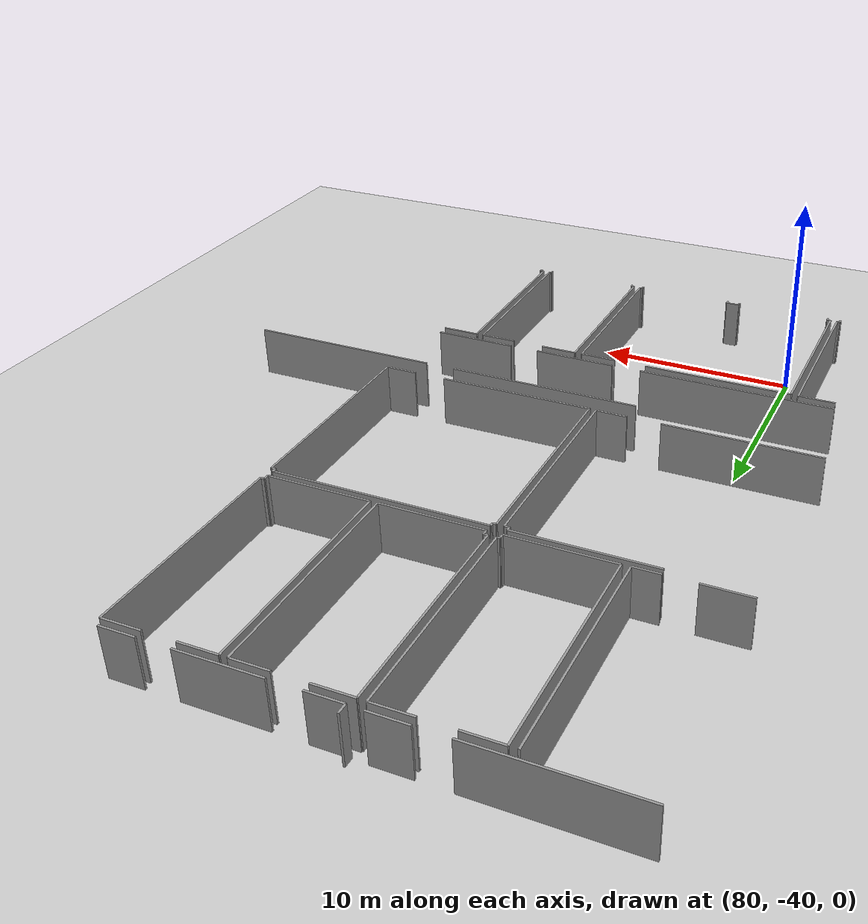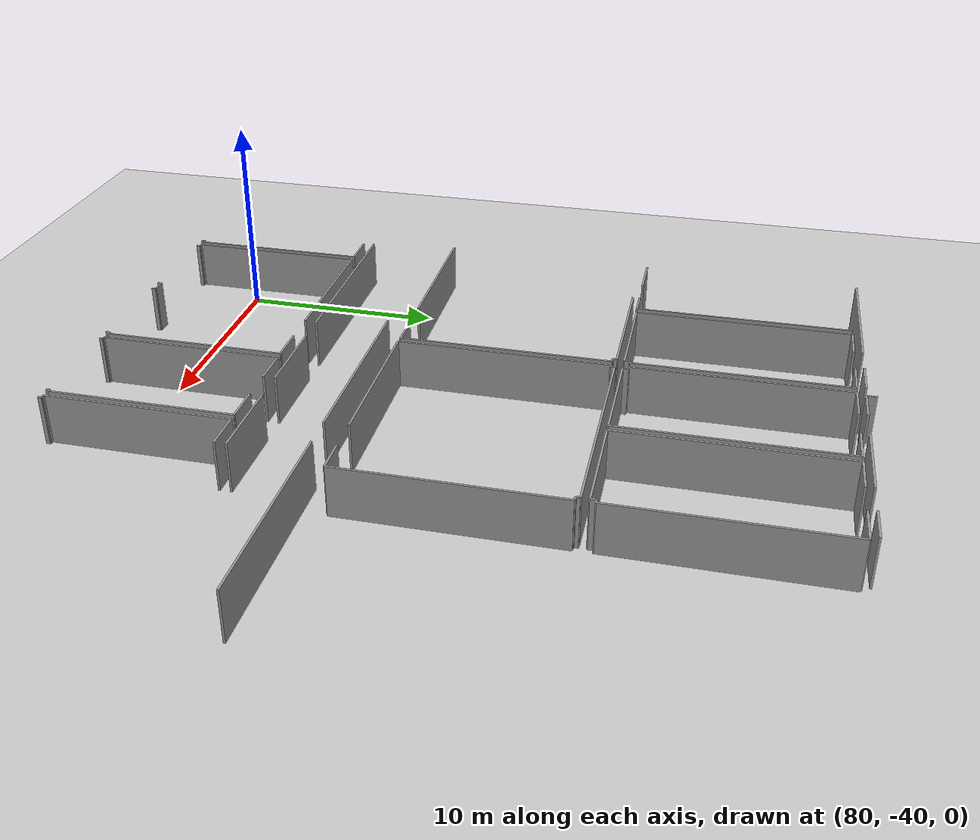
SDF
<sdf version="1.6">
 <world name="default">
  <model name="ground_plane">
   <static>1</static>
   <link name="link">
    <collision name="collision">
     <geometry><plane><normal>0 0 1</normal><size>100 100</size></plane></geometry>
     <surface><friction><ode><mu>100</mu><mu2>50</mu2></ode></friction></surface>
    </collision>
    <visual name="visual">
     <cast_shadows>0</cast_shadows>
     <geometry><plane><normal>0 0 1</normal><size>100 100</size></plane></geometry>
     <material>
      <script><uri>file://media/materials/scripts/gazebo.material</uri><name>Gazebo/Grey</name></script>
     </material>
    </visual>
   </link>
  </model>
  <model name="50015847">
   <static>1</static>
   <link name="Wall_945">
    <collision name="Wall_945_Collision">
     <geometry><box><size>10.6134641786 0.1 2.5</size></box></geometry>
     <pose>5.30673208929 0 1.25 0 0 0</pose>
    </collision>
    <visual name="Wall_945_Visual">
     <pose>5.30673208929 0 1.25 0 0 0</pose>
     <geometry><box><size>10.6134641786 0.1 2.5</size></box></geometry>
     <material>
      <script><uri>file://media/materials/scripts/gazebo.material</uri><name>Gazebo/Grey</name></script>
      <ambient>1 1 1 1</ambient>
     </material>
    </visual>
    <pose>225.061270148 -62.5532618091 0 0 0 1.57079632679</pose>
   </link>
   <link name="Wall_946">
    <collision name="Wall_946_Collision">
     <geometry><box><size>1.8406467687 0.1 2.5</size></box></geometry>
     <pose>0.920323384349 0 1.25 0 0 0</pose>
    </collision>
    <visual name="Wall_946_Visual">
     <pose>0.920323384349 0 1.25 0 0 0</pose>
     <geometry><box><size>1.8406467687 0.1 2.5</size></box></geometry>
     <material>
      <script><uri>file://media/materials/scripts/gazebo.material</uri><name>Gazebo/Grey</name></script>
      <ambient>1 1 1 1</ambient>
     </material>
    </visual>
    <pose>225.061270148 -51.9397976305 0 0 0 0.0</pose>
   </link>
   <link name="Wall_947">
    <collision name="Wall_947_Collision">
     <geometry><box><size>1.85844307724 0.1 2.5</size></box></geometry>
     <pose>0.929221538618 0 1.25 0 0 0</pose>
    </collision>
    <visual name="Wall_947_Visual">
     <pose>0.929221538618 0 1.25 0 0 0</pose>
     <geometry><box><size>1.85844307724 0.1 2.5</size></box></geometry>
     <material>
      <script><uri>file://media/materials/scripts/gazebo.material</uri><name>Gazebo/Grey</name></script>
      <ambient>1 1 1 1</ambient>
     </material>
    </visual>
    <pose>228.455280419 -51.9397976305 0 0 0 0.0</pose>
   </link>
   <link name="Wall_948">
    <collision name="Wall_948_Collision">
     <geometry><box><size>10.3343163675 0.1 2.5</size></box></geometry>
     <pose>5.16715818376 0 1.25 0 0 0</pose>
    </collision>
    <visual name="Wall_948_Visual">
     <pose>5.16715818376 0 1.25 0 0 0</pose>
     <geometry><box><size>10.3343163675 0.1 2.5</size></box></geometry>
     <material>
      <script><uri>file://media/materials/scripts/gazebo.material</uri><name>Gazebo/Grey</name></script>
      <ambient>1 1 1 1</ambient>
     </material>
    </visual>
    <pose>230.313723496 -51.9397976305 0 0 0 -1.57079632679</pose>
   </link>
   <link name="Wall_949">
    <collision name="Wall_949_Collision">
     <geometry><box><size>0.195759393909 0.1 2.5</size></box></geometry>
     <pose>0.0978796969543 0 1.25 0 0 0</pose>
    </collision>
    <visual name="Wall_949_Visual">
     <pose>0.0978796969543 0 1.25 0 0 0</pose>
     <geometry><box><size>0.195759393909 0.1 2.5</size></box></geometry>
     <material>
      <script><uri>file://media/materials/scripts/gazebo.material</uri><name>Gazebo/Grey</name></script>
      <ambient>1 1 1 1</ambient>
     </material>
    </visual>
    <pose>230.313723496 -62.2741139981 0 0 0 3.14159265359</pose>
   </link>
   <link name="Wall_950">
    <collision name="Wall_950_Collision">
     <geometry><box><size>0.274825850409 0.1 2.5</size></box></geometry>
     <pose>0.137412925205 0 1.25 0 0 0</pose>
    </collision>
    <visual name="Wall_950_Visual">
     <pose>0.137412925205 0 1.25 0 0 0</pose>
     <geometry><box><size>0.274825850409 0.1 2.5</size></box></geometry>
     <material>
      <script><uri>file://media/materials/scripts/gazebo.material</uri><name>Gazebo/Grey</name></script>
      <ambient>1 1 1 1</ambient>
     </material>
    </visual>
    <pose>230.117964102 -62.2741139981 0 0 0 -1.57079632679</pose>
   </link>
   <link name="Wall_951">
    <collision name="Wall_951_Collision">
     <geometry><box><size>5.05669580133 0.1 2.5</size></box></geometry>
     <pose>2.52834790067 0 1.25 0 0 0</pose>
    </collision>
    <visual name="Wall_951_Visual">
     <pose>2.52834790067 0 1.25 0 0 0</pose>
     <geometry><box><size>5.05669580133 0.1 2.5</size></box></geometry>
     <material>
      <script><uri>file://media/materials/scripts/gazebo.material</uri><name>Gazebo/Grey</name></script>
      <ambient>1 1 1 1</ambient>
     </material>
    </visual>
    <pose>230.117964102 -62.5489398485 0 0 0 -3.14073795294</pose>
   </link>
   <link name="Wall_952">
    <collision name="Wall_952_Collision">
     <geometry><box><size>10.3335536686 0.1 2.5</size></box></geometry>
     <pose>5.16677683429 0 1.25 0 0 0</pose>
    </collision>
    <visual name="Wall_952_Visual">
     <pose>5.16677683429 0 1.25 0 0 0</pose>
     <geometry><box><size>10.3335536686 0.1 2.5</size></box></geometry>
     <material>
      <script><uri>file://media/materials/scripts/gazebo.material</uri><name>Gazebo/Grey</name></script>
      <ambient>1 1 1 1</ambient>
     </material>
    </visual>
    <pose>219.468144608 -62.2830121523 0 0 0 1.57079632679</pose>
   </link>
   <link name="Wall_953">
    <collision name="Wall_953_Collision">
     <geometry><box><size>1.88895103473 0.1 2.5</size></box></geometry>
     <pose>0.944475517364 0 1.25 0 0 0</pose>
    </collision>
    <visual name="Wall_953_Visual">
     <pose>0.944475517364 0 1.25 0 0 0</pose>
     <geometry><box><size>1.88895103473 0.1 2.5</size></box></geometry>
     <material>
      <script><uri>file://media/materials/scripts/gazebo.material</uri><name>Gazebo/Grey</name></script>
      <ambient>1 1 1 1</ambient>
     </material>
    </visual>
    <pose>219.468144608 -51.9494584838 0 0 0 0.0</pose>
   </link>
   <link name="Wall_954">
    <collision name="Wall_954_Collision">
     <geometry><box><size>1.7847155133 0.1 2.5</size></box></geometry>
     <pose>0.892357756648 0 1.25 0 0 0</pose>
    </collision>
    <visual name="Wall_954_Visual">
     <pose>0.892357756648 0 1.25 0 0 0</pose>
     <geometry><box><size>1.7847155133 0.1 2.5</size></box></geometry>
     <material>
      <script><uri>file://media/materials/scripts/gazebo.material</uri><name>Gazebo/Grey</name></script>
      <ambient>1 1 1 1</ambient>
     </material>
    </visual>
    <pose>222.913001475 -51.9494584838 0 0 0 0.0</pose>
   </link>
   <link name="Wall_955">
    <collision name="Wall_955_Collision">
     <geometry><box><size>10.6038033254 0.1 2.5</size></box></geometry>
     <pose>5.30190166268 0 1.25 0 0 0</pose>
    </collision>
    <visual name="Wall_955_Visual">
     <pose>5.30190166268 0 1.25 0 0 0</pose>
     <geometry><box><size>10.6038033254 0.1 2.5</size></box></geometry>
     <material>
      <script><uri>file://media/materials/scripts/gazebo.material</uri><name>Gazebo/Grey</name></script>
      <ambient>1 1 1 1</ambient>
     </material>
    </visual>
    <pose>224.697716988 -51.9494584838 0 0 0 -1.57079632679</pose>
   </link>
   <link name="Wall_956">
    <collision name="Wall_956_Collision">
     <geometry><box><size>5.03381298622 0.1 2.5</size></box></geometry>
     <pose>2.51690649311 0 1.25 0 0 0</pose>
    </collision>
    <visual name="Wall_956_Visual">
     <pose>2.51690649311 0 1.25 0 0 0</pose>
     <geometry><box><size>5.03381298622 0.1 2.5</size></box></geometry>
     <material>
      <script><uri>file://media/materials/scripts/gazebo.material</uri><name>Gazebo/Grey</name></script>
      <ambient>1 1 1 1</ambient>
     </material>
    </visual>
    <pose>224.697716988 -62.5532618091 0 0 0 3.14159265359</pose>
   </link>
   <link name="Wall_957">
    <collision name="Wall_957_Collision">
     <geometry><box><size>0.285249402552 0.1 2.5</size></box></geometry>
     <pose>0.142624701276 0 1.25 0 0 0</pose>
    </collision>
    <visual name="Wall_957_Visual">
     <pose>0.142624701276 0 1.25 0 0 0</pose>
     <geometry><box><size>0.285249402552 0.1 2.5</size></box></geometry>
     <material>
      <script><uri>file://media/materials/scripts/gazebo.material</uri><name>Gazebo/Grey</name></script>
      <ambient>1 1 1 1</ambient>
     </material>
    </visual>
    <pose>219.663904002 -62.5532618091 0 0 0 1.57079632679</pose>
   </link>
   <link name="Wall_958">
    <collision name="Wall_958_Collision">
     <geometry><box><size>0.196333218474 0.1 2.5</size></box></geometry>
     <pose>0.0981666092372 0 1.25 0 0 0</pose>
    </collision>
    <visual name="Wall_958_Visual">
     <pose>0.0981666092372 0 1.25 0 0 0</pose>
     <geometry><box><size>0.196333218474 0.1 2.5</size></box></geometry>
     <material>
      <script><uri>file://media/materials/scripts/gazebo.material</uri><name>Gazebo/Grey</name></script>
      <ambient>1 1 1 1</ambient>
     </material>
    </visual>
    <pose>219.663904002 -62.2680124066 0 0 0 -3.0651187065</pose>
   </link>
   <link name="Wall_959">
    <collision name="Wall_959_Collision">
     <geometry><box><size>10.6088879849 0.1 2.5</size></box></geometry>
     <pose>5.30444399247 0 1.25 0 0 0</pose>
    </collision>
    <visual name="Wall_959_Visual">
     <pose>5.30444399247 0 1.25 0 0 0</pose>
     <geometry><box><size>10.6088879849 0.1 2.5</size></box></geometry>
     <material>
      <script><uri>file://media/materials/scripts/gazebo.material</uri><name>Gazebo/Grey</name></script>
      <ambient>1 1 1 1</ambient>
     </material>
    </visual>
    <pose>213.857222759 -62.5489398485 0 0 0 1.57079632679</pose>
   </link>
   <link name="Wall_960">
    <collision name="Wall_960_Collision">
     <geometry><box><size>1.79488483246 0.1 2.5</size></box></geometry>
     <pose>0.89744241623 0 1.25 0 0 0</pose>
    </collision>
    <visual name="Wall_960_Visual">
     <pose>0.89744241623 0 1.25 0 0 0</pose>
     <geometry><box><size>1.79488483246 0.1 2.5</size></box></geometry>
     <material>
      <script><uri>file://media/materials/scripts/gazebo.material</uri><name>Gazebo/Grey</name></script>
      <ambient>1 1 1 1</ambient>
     </material>
    </visual>
    <pose>213.857222759 -51.9400518635 0 0 0 0.0</pose>
   </link>
   <link name="Wall_961">
    <collision name="Wall_961_Collision">
     <geometry><box><size>1.88640870494 0.1 2.5</size></box></geometry>
     <pose>0.943204352469 0 1.25 0 0 0</pose>
    </collision>
    <visual name="Wall_961_Visual">
     <pose>0.943204352469 0 1.25 0 0 0</pose>
     <geometry><box><size>1.88640870494 0.1 2.5</size></box></geometry>
     <material>
      <script><uri>file://media/materials/scripts/gazebo.material</uri><name>Gazebo/Grey</name></script>
      <ambient>1 1 1 1</ambient>
     </material>
    </visual>
    <pose>217.192759445 -51.9400518635 0 0 0 0.0</pose>
   </link>
   <link name="Wall_962">
    <collision name="Wall_962_Collision">
     <geometry><box><size>10.3485534143 0.1 2.5</size></box></geometry>
     <pose>5.17427670717 0 1.25 0 0 0</pose>
    </collision>
    <visual name="Wall_962_Visual">
     <pose>5.17427670717 0 1.25 0 0 0</pose>
     <geometry><box><size>10.3485534143 0.1 2.5</size></box></geometry>
     <material>
      <script><uri>file://media/materials/scripts/gazebo.material</uri><name>Gazebo/Grey</name></script>
      <ambient>1 1 1 1</ambient>
     </material>
    </visual>
    <pose>219.07916815 -51.9400518635 0 0 0 -1.57079632679</pose>
   </link>
   <link name="Wall_963">
    <collision name="Wall_963_Collision">
     <geometry><box><size>0.147455127879 0.1 2.5</size></box></geometry>
     <pose>0.0737275639396 0 1.25 0 0 0</pose>
    </collision>
    <visual name="Wall_963_Visual">
     <pose>0.0737275639396 0 1.25 0 0 0</pose>
     <geometry><box><size>0.147455127879 0.1 2.5</size></box></geometry>
     <material>
      <script><uri>file://media/materials/scripts/gazebo.material</uri><name>Gazebo/Grey</name></script>
      <ambient>1 1 1 1</ambient>
     </material>
    </visual>
    <pose>219.07916815 -62.2886052779 0 0 0 3.14159265359</pose>
   </link>
   <link name="Wall_964">
    <collision name="Wall_964_Collision">
     <geometry><box><size>0.2603345706 0.1 2.5</size></box></geometry>
     <pose>0.1301672853 0 1.25 0 0 0</pose>
    </collision>
    <visual name="Wall_964_Visual">
     <pose>0.1301672853 0 1.25 0 0 0</pose>
     <geometry><box><size>0.2603345706 0.1 2.5</size></box></geometry>
     <material>
      <script><uri>file://media/materials/scripts/gazebo.material</uri><name>Gazebo/Grey</name></script>
      <ambient>1 1 1 1</ambient>
     </material>
    </visual>
    <pose>218.931713022 -62.2886052779 0 0 0 -1.57079632679</pose>
   </link>
   <link name="Wall_965">
    <collision name="Wall_965_Collision">
     <geometry><box><size>5.07449026288 0.1 2.5</size></box></geometry>
     <pose>2.53724513144 0 1.25 0 0 0</pose>
    </collision>
    <visual name="Wall_965_Visual">
     <pose>2.53724513144 0 1.25 0 0 0</pose>
     <geometry><box><size>5.07449026288 0.1 2.5</size></box></geometry>
     <material>
      <script><uri>file://media/materials/scripts/gazebo.material</uri><name>Gazebo/Grey</name></script>
      <ambient>1 1 1 1</ambient>
     </material>
    </visual>
    <pose>218.931713022 -62.5489398485 0 0 0 3.14159265359</pose>
   </link>
   <link name="Wall_969">
    <collision name="Wall_969_Collision">
     <geometry><box><size>10.6480398637 0.1 2.5</size></box></geometry>
     <pose>5.32401993187 0 1.25 0 0 0</pose>
    </collision>
    <visual name="Wall_969_Visual">
     <pose>5.32401993187 0 1.25 0 0 0</pose>
     <geometry><box><size>10.6480398637 0.1 2.5</size></box></geometry>
     <material>
      <script><uri>file://media/materials/scripts/gazebo.material</uri><name>Gazebo/Grey</name></script>
      <ambient>1 1 1 1</ambient>
     </material>
    </visual>
    <pose>213.460619312 -51.9303910103 0 0 0 -1.57079632679</pose>
   </link>
   <link name="Wall_970">
    <collision name="Wall_970_Collision">
     <geometry><box><size>1.27116489551 0.1 2.5</size></box></geometry>
     <pose>0.635582447755 0 1.25 0 0 0</pose>
    </collision>
    <visual name="Wall_970_Visual">
     <pose>0.635582447755 0 1.25 0 0 0</pose>
     <geometry><box><size>1.27116489551 0.1 2.5</size></box></geometry>
     <material>
      <script><uri>file://media/materials/scripts/gazebo.material</uri><name>Gazebo/Grey</name></script>
      <ambient>1 1 1 1</ambient>
     </material>
    </visual>
    <pose>213.460619312 -62.5784308741 0 0 0 3.14159265359</pose>
   </link>
   <link name="Wall_971">
    <collision name="Wall_971_Collision">
     <geometry><box><size>2.26140234911 0.1 2.5</size></box></geometry>
     <pose>1.13070117456 0 1.25 0 0 0</pose>
    </collision>
    <visual name="Wall_971_Visual">
     <pose>1.13070117456 0 1.25 0 0 0</pose>
     <geometry><box><size>2.26140234911 0.1 2.5</size></box></geometry>
     <material>
      <script><uri>file://media/materials/scripts/gazebo.material</uri><name>Gazebo/Grey</name></script>
      <ambient>1 1 1 1</ambient>
     </material>
    </visual>
    <pose>210.714903137 -62.5784308741 0 0 0 3.14159265359</pose>
   </link>
   <link name="Wall_1197">
    <collision name="Wall_1197_Collision">
     <geometry><box><size>1.68810698124 0.1 2.5</size></box></geometry>
     <pose>0.844053490619 0 1.25 0 0 0</pose>
    </collision>
    <visual name="Wall_1197_Visual">
     <pose>0.844053490619 0 1.25 0 0 0</pose>
     <geometry><box><size>1.68810698124 0.1 2.5</size></box></geometry>
     <material>
      <script><uri>file://media/materials/scripts/gazebo.material</uri><name>Gazebo/Grey</name></script>
      <ambient>1 1 1 1</ambient>
     </material>
    </visual>
    <pose>230.097625464 -51.556668531 0 0 0 3.14159265359</pose>
   </link>
   <link name="Wall_1198">
    <collision name="Wall_1198_Collision">
     <geometry><box><size>3.96603447399 0.1 2.5</size></box></geometry>
     <pose>1.983017237 0 1.25 0 0 0</pose>
    </collision>
    <visual name="Wall_1198_Visual">
     <pose>1.983017237 0 1.25 0 0 0</pose>
     <geometry><box><size>3.96603447399 0.1 2.5</size></box></geometry>
     <material>
      <script><uri>file://media/materials/scripts/gazebo.material</uri><name>Gazebo/Grey</name></script>
      <ambient>1 1 1 1</ambient>
     </material>
    </visual>
    <pose>226.835816342 -51.556668531 0 0 0 3.14159265359</pose>
   </link>
   <link name="Wall_1199">
    <collision name="Wall_1199_Collision">
     <geometry><box><size>1.68556465145 0.1 2.5</size></box></geometry>
     <pose>0.842782325723 0 1.25 0 0 0</pose>
    </collision>
    <visual name="Wall_1199_Visual">
     <pose>0.842782325723 0 1.25 0 0 0</pose>
     <geometry><box><size>1.68556465145 0.1 2.5</size></box></geometry>
     <material>
      <script><uri>file://media/materials/scripts/gazebo.material</uri><name>Gazebo/Grey</name></script>
      <ambient>1 1 1 1</ambient>
     </material>
    </visual>
    <pose>221.357095642 -51.556668531 0 0 0 3.14159265359</pose>
   </link>
   <link name="Wall_1200">
    <collision name="Wall_1200_Collision">
     <geometry><box><size>0.491432348604 0.1 2.5</size></box></geometry>
     <pose>0.245716174302 0 1.25 0 0 0</pose>
    </collision>
    <visual name="Wall_1200_Visual">
     <pose>0.245716174302 0 1.25 0 0 0</pose>
     <geometry><box><size>0.491432348604 0.1 2.5</size></box></geometry>
     <material>
      <script><uri>file://media/materials/scripts/gazebo.material</uri><name>Gazebo/Grey</name></script>
      <ambient>1 1 1 1</ambient>
     </material>
    </visual>
    <pose>219.671530991 -51.556668531 0 0 0 1.57079632679</pose>
   </link>
   <link name="Wall_1203">
    <collision name="Wall_1203_Collision">
     <geometry><box><size>1.79234250267 0.1 2.5</size></box></geometry>
     <pose>0.896171251335 0 1.25 0 0 0</pose>
    </collision>
    <visual name="Wall_1203_Visual">
     <pose>0.896171251335 0 1.25 0 0 0</pose>
     <geometry><box><size>1.79234250267 0.1 2.5</size></box></geometry>
     <material>
      <script><uri>file://media/materials/scripts/gazebo.material</uri><name>Gazebo/Grey</name></script>
      <ambient>1 1 1 1</ambient>
     </material>
    </visual>
    <pose>218.944424671 -51.5269232725 0 0 0 3.14159265359</pose>
   </link>
   <link name="Wall_1204">
    <collision name="Wall_1204_Collision">
     <geometry><box><size>7.20216606498 0.1 2.5</size></box></geometry>
     <pose>3.60108303249 0 1.25 0 0 0</pose>
    </collision>
    <visual name="Wall_1204_Visual">
     <pose>3.60108303249 0 1.25 0 0 0</pose>
     <geometry><box><size>7.20216606498 0.1 2.5</size></box></geometry>
     <material>
      <script><uri>file://media/materials/scripts/gazebo.material</uri><name>Gazebo/Grey</name></script>
      <ambient>1 1 1 1</ambient>
     </material>
    </visual>
    <pose>215.654649921 -51.5269232725 0 0 0 3.14159265359</pose>
   </link>
   <link name="Wall_1464">
    <collision name="Wall_1464_Collision">
     <geometry><box><size>1.80251182183 0.1 2.5</size></box></geometry>
     <pose>0.901255910917 0 1.25 0 0 0</pose>
    </collision>
    <visual name="Wall_1464_Visual">
     <pose>0.901255910917 0 1.25 0 0 0</pose>
     <geometry><box><size>1.80251182183 0.1 2.5</size></box></geometry>
     <material>
      <script><uri>file://media/materials/scripts/gazebo.material</uri><name>Gazebo/Grey</name></script>
      <ambient>1 1 1 1</ambient>
     </material>
    </visual>
    <pose>208.884425688 -78.6454466873 0 0 0 0.0</pose>
   </link>
   <link name="Wall_1465">
    <collision name="Wall_1465_Collision">
     <geometry><box><size>8.96857680378 0.1 2.5</size></box></geometry>
     <pose>4.48428840189 0 1.25 0 0 0</pose>
    </collision>
    <visual name="Wall_1465_Visual">
     <pose>4.48428840189 0 1.25 0 0 0</pose>
     <geometry><box><size>8.96857680378 0.1 2.5</size></box></geometry>
     <material>
      <script><uri>file://media/materials/scripts/gazebo.material</uri><name>Gazebo/Grey</name></script>
      <ambient>1 1 1 1</ambient>
     </material>
    </visual>
    <pose>210.68693751 -78.6454466873 0 0 0 -1.57079632679</pose>
   </link>
   <link name="Wall_1466">
    <collision name="Wall_1466_Collision">
     <geometry><box><size>0.144912798088 0.1 2.5</size></box></geometry>
     <pose>0.0724563990441 0 1.25 0 0 0</pose>
    </collision>
    <visual name="Wall_1466_Visual">
     <pose>0.0724563990441 0 1.25 0 0 0</pose>
     <geometry><box><size>0.144912798088 0.1 2.5</size></box></geometry>
     <material>
      <script><uri>file://media/materials/scripts/gazebo.material</uri><name>Gazebo/Grey</name></script>
      <ambient>1 1 1 1</ambient>
     </material>
    </visual>
    <pose>210.68693751 -87.6140234911 0 0 0 3.14159265359</pose>
   </link>
   <link name="Wall_1467">
    <collision name="Wall_1467_Collision">
     <geometry><box><size>0.222962322672 0.1 2.5</size></box></geometry>
     <pose>0.111481161336 0 1.25 0 0 0</pose>
    </collision>
    <visual name="Wall_1467_Visual">
     <pose>0.111481161336 0 1.25 0 0 0</pose>
     <geometry><box><size>0.222962322672 0.1 2.5</size></box></geometry>
     <material>
      <script><uri>file://media/materials/scripts/gazebo.material</uri><name>Gazebo/Grey</name></script>
      <ambient>1 1 1 1</ambient>
     </material>
    </visual>
    <pose>210.542024711 -87.6140234911 0 0 0 -1.57079632679</pose>
   </link>
   <link name="Wall_1474">
    <collision name="Wall_1474_Collision">
     <geometry><box><size>8.94595006864 0.1 2.5</size></box></geometry>
     <pose>4.47297503432 0 1.25 0 0 0</pose>
    </collision>
    <visual name="Wall_1474_Visual">
     <pose>4.47297503432 0 1.25 0 0 0</pose>
     <geometry><box><size>8.94595006864 0.1 2.5</size></box></geometry>
     <material>
      <script><uri>file://media/materials/scripts/gazebo.material</uri><name>Gazebo/Grey</name></script>
      <ambient>1 1 1 1</ambient>
     </material>
    </visual>
    <pose>211.04286368 -87.6104642294 0 0 0 1.57079632679</pose>
   </link>
   <link name="Wall_1475">
    <collision name="Wall_1475_Collision">
     <geometry><box><size>7.43377230894 0.1 2.5</size></box></geometry>
     <pose>3.71688615447 0 1.25 0 0 0</pose>
    </collision>
    <visual name="Wall_1475_Visual">
     <pose>3.71688615447 0 1.25 0 0 0</pose>
     <geometry><box><size>7.43377230894 0.1 2.5</size></box></geometry>
     <material>
      <script><uri>file://media/materials/scripts/gazebo.material</uri><name>Gazebo/Grey</name></script>
      <ambient>1 1 1 1</ambient>
     </material>
    </visual>
    <pose>211.04286368 -78.6645141608 0 0 0 0.0</pose>
   </link>
   <link name="Wall_1476">
    <collision name="Wall_1476_Collision">
     <geometry><box><size>1.79488483246 0.1 2.5</size></box></geometry>
     <pose>0.89744241623 0 1.25 0 0 0</pose>
    </collision>
    <visual name="Wall_1476_Visual">
     <pose>0.89744241623 0 1.25 0 0 0</pose>
     <geometry><box><size>1.79488483246 0.1 2.5</size></box></geometry>
     <material>
      <script><uri>file://media/materials/scripts/gazebo.material</uri><name>Gazebo/Grey</name></script>
      <ambient>1 1 1 1</ambient>
     </material>
    </visual>
    <pose>220.108811715 -78.6645141608 0 0 0 0.0</pose>
   </link>
   <link name="Wall_1477">
    <collision name="Wall_1477_Collision">
     <geometry><box><size>8.98408501551 0.1 2.5</size></box></geometry>
     <pose>4.49204250775 0 1.25 0 0 0</pose>
    </collision>
    <visual name="Wall_1477_Visual">
     <pose>4.49204250775 0 1.25 0 0 0</pose>
     <geometry><box><size>8.98408501551 0.1 2.5</size></box></geometry>
     <material>
      <script><uri>file://media/materials/scripts/gazebo.material</uri><name>Gazebo/Grey</name></script>
      <ambient>1 1 1 1</ambient>
     </material>
    </visual>
    <pose>221.903696548 -78.6645141608 0 0 0 -1.57079632679</pose>
   </link>
   <link name="Wall_1478">
    <collision name="Wall_1478_Collision">
     <geometry><box><size>0.137285808715 0.1 2.5</size></box></geometry>
     <pose>0.0686429043575 0 1.25 0 0 0</pose>
    </collision>
    <visual name="Wall_1478_Visual">
     <pose>0.0686429043575 0 1.25 0 0 0</pose>
     <geometry><box><size>0.137285808715 0.1 2.5</size></box></geometry>
     <material>
      <script><uri>file://media/materials/scripts/gazebo.material</uri><name>Gazebo/Grey</name></script>
      <ambient>1 1 1 1</ambient>
     </material>
    </visual>
    <pose>221.903696548 -87.6485991763 0 0 0 3.14159265359</pose>
   </link>
   <link name="Wall_1479">
    <collision name="Wall_1479_Collision">
     <geometry><box><size>0.181776580058 0.1 2.5</size></box></geometry>
     <pose>0.090888290029 0 1.25 0 0 0</pose>
    </collision>
    <visual name="Wall_1479_Visual">
     <pose>0.090888290029 0 1.25 0 0 0</pose>
     <geometry><box><size>0.181776580058 0.1 2.5</size></box></geometry>
     <material>
      <script><uri>file://media/materials/scripts/gazebo.material</uri><name>Gazebo/Grey</name></script>
      <ambient>1 1 1 1</ambient>
     </material>
    </visual>
    <pose>221.766410739 -87.6485991763 0 0 0 -1.57079632679</pose>
   </link>
   <link name="Wall_1480">
    <collision name="Wall_1480_Collision">
     <geometry><box><size>0.208216809885 0.1 2.5</size></box></geometry>
     <pose>0.104108404942 0 1.25 0 0 0</pose>
    </collision>
    <visual name="Wall_1480_Visual">
     <pose>0.104108404942 0 1.25 0 0 0</pose>
     <geometry><box><size>0.208216809885 0.1 2.5</size></box></geometry>
     <material>
      <script><uri>file://media/materials/scripts/gazebo.material</uri><name>Gazebo/Grey</name></script>
      <ambient>1 1 1 1</ambient>
     </material>
    </visual>
    <pose>216.806325317 -87.8303757563 0 0 0 1.57079632679</pose>
   </link>
   <link name="Wall_1481">
    <collision name="Wall_1481_Collision">
     <geometry><box><size>0.678802054202 0.1 2.5</size></box></geometry>
     <pose>0.339401027101 0 1.25 0 0 0</pose>
    </collision>
    <visual name="Wall_1481_Visual">
     <pose>0.339401027101 0 1.25 0 0 0</pose>
     <geometry><box><size>0.678802054202 0.1 2.5</size></box></geometry>
     <material>
      <script><uri>file://media/materials/scripts/gazebo.material</uri><name>Gazebo/Grey</name></script>
      <ambient>1 1 1 1</ambient>
     </material>
    </visual>
    <pose>216.806325317 -87.6221589465 0 0 0 3.14159265359</pose>
   </link>
   <link name="Wall_1482">
    <collision name="Wall_1482_Collision">
     <geometry><box><size>0.20669141201 0.1 2.5</size></box></geometry>
     <pose>0.103345706005 0 1.25 0 0 0</pose>
    </collision>
    <visual name="Wall_1482_Visual">
     <pose>0.103345706005 0 1.25 0 0 0</pose>
     <geometry><box><size>0.20669141201 0.1 2.5</size></box></geometry>
     <material>
      <script><uri>file://media/materials/scripts/gazebo.material</uri><name>Gazebo/Grey</name></script>
      <ambient>1 1 1 1</ambient>
     </material>
    </visual>
    <pose>216.127523262 -87.6221589465 0 0 0 -1.57079632679</pose>
   </link>
   <link name="Wall_1483">
    <collision name="Wall_1483_Collision">
     <geometry><box><size>0.185081608786 0.1 2.5</size></box></geometry>
     <pose>0.0925408043931 0 1.25 0 0 0</pose>
    </collision>
    <visual name="Wall_1483_Visual">
     <pose>0.0925408043931 0 1.25 0 0 0</pose>
     <geometry><box><size>0.185081608786 0.1 2.5</size></box></geometry>
     <material>
      <script><uri>file://media/materials/scripts/gazebo.material</uri><name>Gazebo/Grey</name></script>
      <ambient>1 1 1 1</ambient>
     </material>
    </visual>
    <pose>211.225911425 -87.8288503585 0 0 0 1.57079632679</pose>
   </link>
   <link name="Wall_1484">
    <collision name="Wall_1484_Collision">
     <geometry><box><size>0.186052863462 0.1 2.5</size></box></geometry>
     <pose>0.0930264317311 0 1.25 0 0 0</pose>
    </collision>
    <visual name="Wall_1484_Visual">
     <pose>0.0930264317311 0 1.25 0 0 0</pose>
     <geometry><box><size>0.186052863462 0.1 2.5</size></box></geometry>
     <material>
      <script><uri>file://media/materials/scripts/gazebo.material</uri><name>Gazebo/Grey</name></script>
      <ambient>1 1 1 1</ambient>
     </material>
    </visual>
    <pose>211.225911425 -87.6437687497 0 0 0 2.96161693429</pose>
   </link>
   <link name="Wall_1485">
    <collision name="Wall_1485_Collision">
     <geometry><box><size>8.99120353892 0.1 2.5</size></box></geometry>
     <pose>4.49560176946 0 1.25 0 0 0</pose>
    </collision>
    <visual name="Wall_1485_Visual">
     <pose>4.49560176946 0 1.25 0 0 0</pose>
     <geometry><box><size>8.99120353892 0.1 2.5</size></box></geometry>
     <material>
      <script><uri>file://media/materials/scripts/gazebo.material</uri><name>Gazebo/Grey</name></script>
      <ambient>1 1 1 1</ambient>
     </material>
    </visual>
    <pose>222.279961357 -87.6366502263 0 0 0 1.57079632679</pose>
   </link>
   <link name="Wall_1486">
    <collision name="Wall_1486_Collision">
     <geometry><box><size>1.82030813037 0.1 2.5</size></box></geometry>
     <pose>0.910154065185 0 1.25 0 0 0</pose>
    </collision>
    <visual name="Wall_1486_Visual">
     <pose>0.910154065185 0 1.25 0 0 0</pose>
     <geometry><box><size>1.82030813037 0.1 2.5</size></box></geometry>
     <material>
      <script><uri>file://media/materials/scripts/gazebo.material</uri><name>Gazebo/Grey</name></script>
      <ambient>1 1 1 1</ambient>
     </material>
    </visual>
    <pose>222.279961357 -78.6454466873 0 0 0 0.0</pose>
   </link>
   <link name="Wall_1487">
    <collision name="Wall_1487_Collision">
     <geometry><box><size>1.79234250267 0.1 2.5</size></box></geometry>
     <pose>0.896171251335 0 1.25 0 0 0</pose>
    </collision>
    <visual name="Wall_1487_Visual">
     <pose>0.896171251335 0 1.25 0 0 0</pose>
     <geometry><box><size>1.79234250267 0.1 2.5</size></box></geometry>
     <material>
      <script><uri>file://media/materials/scripts/gazebo.material</uri><name>Gazebo/Grey</name></script>
      <ambient>1 1 1 1</ambient>
     </material>
    </visual>
    <pose>225.696852596 -78.6454466873 0 0 0 0.0</pose>
   </link>
   <link name="Wall_1488">
    <collision name="Wall_1488_Collision">
     <geometry><box><size>8.97823765699 0.1 2.5</size></box></geometry>
     <pose>4.48911882849 0 1.25 0 0 0</pose>
    </collision>
    <visual name="Wall_1488_Visual">
     <pose>4.48911882849 0 1.25 0 0 0</pose>
     <geometry><box><size>8.97823765699 0.1 2.5</size></box></geometry>
     <material>
      <script><uri>file://media/materials/scripts/gazebo.material</uri><name>Gazebo/Grey</name></script>
      <ambient>1 1 1 1</ambient>
     </material>
    </visual>
    <pose>227.489195098 -78.6454466873 0 0 0 -1.57079632679</pose>
   </link>
   <link name="Wall_1489">
    <collision name="Wall_1489_Collision">
     <geometry><box><size>0.116947170387 0.1 2.5</size></box></geometry>
     <pose>0.0584735851935 0 1.25 0 0 0</pose>
    </collision>
    <visual name="Wall_1489_Visual">
     <pose>0.0584735851935 0 1.25 0 0 0</pose>
     <geometry><box><size>0.116947170387 0.1 2.5</size></box></geometry>
     <material>
      <script><uri>file://media/materials/scripts/gazebo.material</uri><name>Gazebo/Grey</name></script>
      <ambient>1 1 1 1</ambient>
     </material>
    </visual>
    <pose>227.489195098 -87.6236843443 0 0 0 3.14159265359</pose>
   </link>
   <link name="Wall_1490">
    <collision name="Wall_1490_Collision">
     <geometry><box><size>0.202115218386 0.1 2.5</size></box></geometry>
     <pose>0.101057609193 0 1.25 0 0 0</pose>
    </collision>
    <visual name="Wall_1490_Visual">
     <pose>0.101057609193 0 1.25 0 0 0</pose>
     <geometry><box><size>0.202115218386 0.1 2.5</size></box></geometry>
     <material>
      <script><uri>file://media/materials/scripts/gazebo.material</uri><name>Gazebo/Grey</name></script>
      <ambient>1 1 1 1</ambient>
     </material>
    </visual>
    <pose>227.372247928 -87.6236843443 0 0 0 -1.57079632679</pose>
   </link>
   <link name="Wall_1491">
    <collision name="Wall_1491_Collision">
     <geometry><box><size>0.163980271521 0.1 2.5</size></box></geometry>
     <pose>0.0819901357604 0 1.25 0 0 0</pose>
    </collision>
    <visual name="Wall_1491_Visual">
     <pose>0.0819901357604 0 1.25 0 0 0</pose>
     <geometry><box><size>0.163980271521 0.1 2.5</size></box></geometry>
     <material>
      <script><uri>file://media/materials/scripts/gazebo.material</uri><name>Gazebo/Grey</name></script>
      <ambient>1 1 1 1</ambient>
     </material>
    </visual>
    <pose>222.427416484 -87.8257995627 0 0 0 1.57079632679</pose>
   </link>
   <link name="Wall_1492">
    <collision name="Wall_1492_Collision">
     <geometry><box><size>0.149587755406 0.1 2.5</size></box></geometry>
     <pose>0.0747938777029 0 1.25 0 0 0</pose>
    </collision>
    <visual name="Wall_1492_Visual">
     <pose>0.0747938777029 0 1.25 0 0 0</pose>
     <geometry><box><size>0.149587755406 0.1 2.5</size></box></geometry>
     <material>
      <script><uri>file://media/materials/scripts/gazebo.material</uri><name>Gazebo/Grey</name></script>
      <ambient>1 1 1 1</ambient>
     </material>
    </visual>
    <pose>222.427416484 -87.6618192912 0 0 0 2.97253228895</pose>
   </link>
   <link name="Wall_1493">
    <collision name="Wall_1493_Collision">
     <geometry><box><size>9.01281334215 0.1 2.5</size></box></geometry>
     <pose>4.50640667107 0 1.25 0 0 0</pose>
    </collision>
    <visual name="Wall_1493_Visual">
     <pose>4.50640667107 0 1.25 0 0 0</pose>
     <geometry><box><size>9.01281334215 0.1 2.5</size></box></geometry>
     <material>
      <script><uri>file://media/materials/scripts/gazebo.material</uri><name>Gazebo/Grey</name></script>
      <ambient>1 1 1 1</ambient>
     </material>
    </visual>
    <pose>227.855290588 -87.6391925561 0 0 0 1.57079632679</pose>
   </link>
   <link name="Wall_1494">
    <collision name="Wall_1494_Collision">
     <geometry><box><size>1.86352773682 0.1 2.5</size></box></geometry>
     <pose>0.931763868409 0 1.25 0 0 0</pose>
    </collision>
    <visual name="Wall_1494_Visual">
     <pose>0.931763868409 0 1.25 0 0 0</pose>
     <geometry><box><size>1.86352773682 0.1 2.5</size></box></geometry>
     <material>
      <script><uri>file://media/materials/scripts/gazebo.material</uri><name>Gazebo/Grey</name></script>
      <ambient>1 1 1 1</ambient>
     </material>
    </visual>
    <pose>227.855290588 -78.6263792139 0 0 0 0.0</pose>
   </link>
   <link name="Wall_1500">
    <collision name="Wall_1500_Collision">
     <geometry><box><size>0.185590074744 0.1 2.5</size></box></geometry>
     <pose>0.0927950373722 0 1.25 0 0 0</pose>
    </collision>
    <visual name="Wall_1500_Visual">
     <pose>0.0927950373722 0 1.25 0 0 0</pose>
     <geometry><box><size>0.185590074744 0.1 2.5</size></box></geometry>
     <material>
      <script><uri>file://media/materials/scripts/gazebo.material</uri><name>Gazebo/Grey</name></script>
      <ambient>1 1 1 1</ambient>
     </material>
    </visual>
    <pose>228.040880663 -87.8311384553 0 0 0 1.57079632679</pose>
   </link>
   <link name="Wall_1501">
    <collision name="Wall_1501_Collision">
     <geometry><box><size>0.185698875464 0.1 2.5</size></box></geometry>
     <pose>0.0928494377318 0 1.25 0 0 0</pose>
    </collision>
    <visual name="Wall_1501_Visual">
     <pose>0.0928494377318 0 1.25 0 0 0</pose>
     <geometry><box><size>0.185698875464 0.1 2.5</size></box></geometry>
     <material>
      <script><uri>file://media/materials/scripts/gazebo.material</uri><name>Gazebo/Grey</name></script>
      <ambient>1 1 1 1</ambient>
     </material>
    </visual>
    <pose>228.040880663 -87.6455483805 0 0 0 3.10735945728</pose>
   </link>
   <link name="Wall_1532">
    <collision name="Wall_1532_Collision">
     <geometry><box><size>10.4052473687 0.1 2.5</size></box></geometry>
     <pose>5.20262368434 0 1.25 0 0 0</pose>
    </collision>
    <visual name="Wall_1532_Visual">
     <pose>5.20262368434 0 1.25 0 0 0</pose>
     <geometry><box><size>10.4052473687 0.1 2.5</size></box></geometry>
     <material>
      <script><uri>file://media/materials/scripts/gazebo.material</uri><name>Gazebo/Grey</name></script>
      <ambient>1 1 1 1</ambient>
     </material>
    </visual>
    <pose>219.478313927 -73.516296334 0 0 0 1.57079632679</pose>
   </link>
   <link name="Wall_1533">
    <collision name="Wall_1533_Collision">
     <geometry><box><size>0.183047744953 0.1 2.5</size></box></geometry>
     <pose>0.0915238724767 0 1.25 0 0 0</pose>
    </collision>
    <visual name="Wall_1533_Visual">
     <pose>0.0915238724767 0 1.25 0 0 0</pose>
     <geometry><box><size>0.183047744953 0.1 2.5</size></box></geometry>
     <material>
      <script><uri>file://media/materials/scripts/gazebo.material</uri><name>Gazebo/Grey</name></script>
      <ambient>1 1 1 1</ambient>
     </material>
    </visual>
    <pose>219.478313927 -63.1110489653 0 0 0 0.0</pose>
   </link>
   <link name="Wall_1534">
    <collision name="Wall_1534_Collision">
     <geometry><box><size>0.182793511974 0.1 2.5</size></box></geometry>
     <pose>0.0913967559872 0 1.25 0 0 0</pose>
    </collision>
    <visual name="Wall_1534_Visual">
     <pose>0.0913967559872 0 1.25 0 0 0</pose>
     <geometry><box><size>0.182793511974 0.1 2.5</size></box></geometry>
     <material>
      <script><uri>file://media/materials/scripts/gazebo.material</uri><name>Gazebo/Grey</name></script>
      <ambient>1 1 1 1</ambient>
     </material>
    </visual>
    <pose>219.661361672 -63.1110489653 0 0 0 1.57079632679</pose>
   </link>
   <link name="Wall_1535">
    <collision name="Wall_1535_Collision">
     <geometry><box><size>10.4566024305 0.1 2.5</size></box></geometry>
     <pose>5.22830121523 0 1.25 0 0 0</pose>
    </collision>
    <visual name="Wall_1535_Visual">
     <pose>5.22830121523 0 1.25 0 0 0</pose>
     <geometry><box><size>10.4566024305 0.1 2.5</size></box></geometry>
     <material>
      <script><uri>file://media/materials/scripts/gazebo.material</uri><name>Gazebo/Grey</name></script>
      <ambient>1 1 1 1</ambient>
     </material>
    </visual>
    <pose>219.661361672 -62.9282554533 0 0 0 0.0</pose>
   </link>
   <link name="Wall_1536">
    <collision name="Wall_1536_Collision">
     <geometry><box><size>0.205928713073 0.1 2.5</size></box></geometry>
     <pose>0.102964356536 0 1.25 0 0 0</pose>
    </collision>
    <visual name="Wall_1536_Visual">
     <pose>0.102964356536 0 1.25 0 0 0</pose>
     <geometry><box><size>0.205928713073 0.1 2.5</size></box></geometry>
     <material>
      <script><uri>file://media/materials/scripts/gazebo.material</uri><name>Gazebo/Grey</name></script>
      <ambient>1 1 1 1</ambient>
     </material>
    </visual>
    <pose>230.117964102 -62.9282554533 0 0 0 -1.57079632679</pose>
   </link>
   <link name="Wall_1537">
    <collision name="Wall_1537_Collision">
     <geometry><box><size>0.218640362028 0.1 2.5</size></box></geometry>
     <pose>0.109320181014 0 1.25 0 0 0</pose>
    </collision>
    <visual name="Wall_1537_Visual">
     <pose>0.109320181014 0 1.25 0 0 0</pose>
     <geometry><box><size>0.218640362028 0.1 2.5</size></box></geometry>
     <material>
      <script><uri>file://media/materials/scripts/gazebo.material</uri><name>Gazebo/Grey</name></script>
      <ambient>1 1 1 1</ambient>
     </material>
    </visual>
    <pose>230.117964102 -63.1341841664 0 0 0 0.0</pose>
   </link>
   <link name="Wall_1538">
    <collision name="Wall_1538_Collision">
     <geometry><box><size>10.3490618803 0.1 2.5</size></box></geometry>
     <pose>5.17453094015 0 1.25 0 0 0</pose>
    </collision>
    <visual name="Wall_1538_Visual">
     <pose>5.17453094015 0 1.25 0 0 0</pose>
     <geometry><box><size>10.3490618803 0.1 2.5</size></box></geometry>
     <material>
      <script><uri>file://media/materials/scripts/gazebo.material</uri><name>Gazebo/Grey</name></script>
      <ambient>1 1 1 1</ambient>
     </material>
    </visual>
    <pose>230.336604464 -63.1341841664 0 0 0 -1.57079632679</pose>
   </link>
   <link name="Wall_1539">
    <collision name="Wall_1539_Collision">
     <geometry><box><size>1.57624447043 0.1 2.5</size></box></geometry>
     <pose>0.788122235216 0 1.25 0 0 0</pose>
    </collision>
    <visual name="Wall_1539_Visual">
     <pose>0.788122235216 0 1.25 0 0 0</pose>
     <geometry><box><size>1.57624447043 0.1 2.5</size></box></geometry>
     <material>
      <script><uri>file://media/materials/scripts/gazebo.material</uri><name>Gazebo/Grey</name></script>
      <ambient>1 1 1 1</ambient>
     </material>
    </visual>
    <pose>230.336604464 -73.4832460467 0 0 0 3.14159265359</pose>
   </link>
   <link name="Wall_1540">
    <collision name="Wall_1540_Collision">
     <geometry><box><size>7.68044940952 0.1 2.5</size></box></geometry>
     <pose>3.84022470476 0 1.25 0 0 0</pose>
    </collision>
    <visual name="Wall_1540_Visual">
     <pose>3.84022470476 0 1.25 0 0 0</pose>
     <geometry><box><size>7.68044940952 0.1 2.5</size></box></geometry>
     <material>
      <script><uri>file://media/materials/scripts/gazebo.material</uri><name>Gazebo/Grey</name></script>
      <ambient>1 1 1 1</ambient>
     </material>
    </visual>
    <pose>227.158692226 -73.4832460467 0 0 0 -3.13728946929</pose>
   </link>
   <link name="Wall_1545">
    <collision name="Wall_1545_Collision">
     <geometry><box><size>6.65581939289 0.1 2.5</size></box></geometry>
     <pose>3.32790969645 0 1.25 0 0 0</pose>
    </collision>
    <visual name="Wall_1545_Visual">
     <pose>3.32790969645 0 1.25 0 0 0</pose>
     <geometry><box><size>6.65581939289 0.1 2.5</size></box></geometry>
     <material>
      <script><uri>file://media/materials/scripts/gazebo.material</uri><name>Gazebo/Grey</name></script>
      <ambient>1 1 1 1</ambient>
     </material>
    </visual>
    <pose>212.240301012 -62.9178319012 0 0 0 0.0</pose>
   </link>
   <link name="Wall_1546">
    <collision name="Wall_1546_Collision">
     <geometry><box><size>0.201606752428 0.1 2.5</size></box></geometry>
     <pose>0.100803376214 0 1.25 0 0 0</pose>
    </collision>
    <visual name="Wall_1546_Visual">
     <pose>0.100803376214 0 1.25 0 0 0</pose>
     <geometry><box><size>0.201606752428 0.1 2.5</size></box></geometry>
     <material>
      <script><uri>file://media/materials/scripts/gazebo.material</uri><name>Gazebo/Grey</name></script>
      <ambient>1 1 1 1</ambient>
     </material>
    </visual>
    <pose>218.896120405 -62.9178319012 0 0 0 -1.57079632679</pose>
   </link>
   <link name="Wall_1547">
    <collision name="Wall_1547_Collision">
     <geometry><box><size>0.233894340774 0.1 2.5</size></box></geometry>
     <pose>0.116947170387 0 1.25 0 0 0</pose>
    </collision>
    <visual name="Wall_1547_Visual">
     <pose>0.116947170387 0 1.25 0 0 0</pose>
     <geometry><box><size>0.233894340774 0.1 2.5</size></box></geometry>
     <material>
      <script><uri>file://media/materials/scripts/gazebo.material</uri><name>Gazebo/Grey</name></script>
      <ambient>1 1 1 1</ambient>
     </material>
    </visual>
    <pose>218.896120405 -63.1194386536 0 0 0 0.0</pose>
   </link>
   <link name="Wall_1548">
    <collision name="Wall_1548_Collision">
     <geometry><box><size>10.3709259165 0.1 2.5</size></box></geometry>
     <pose>5.18546295825 0 1.25 0 0 0</pose>
    </collision>
    <visual name="Wall_1548_Visual">
     <pose>5.18546295825 0 1.25 0 0 0</pose>
     <geometry><box><size>10.3709259165 0.1 2.5</size></box></geometry>
     <material>
      <script><uri>file://media/materials/scripts/gazebo.material</uri><name>Gazebo/Grey</name></script>
      <ambient>1 1 1 1</ambient>
     </material>
    </visual>
    <pose>219.130014746 -63.1194386536 0 0 0 -1.57079632679</pose>
   </link>
   <link name="Wall_1549">
    <collision name="Wall_1549_Collision">
     <geometry><box><size>1.55082117252 0.1 2.5</size></box></geometry>
     <pose>0.775410586261 0 1.25 0 0 0</pose>
    </collision>
    <visual name="Wall_1549_Visual">
     <pose>0.775410586261 0 1.25 0 0 0</pose>
     <geometry><box><size>1.55082117252 0.1 2.5</size></box></geometry>
     <material>
      <script><uri>file://media/materials/scripts/gazebo.material</uri><name>Gazebo/Grey</name></script>
      <ambient>1 1 1 1</ambient>
     </material>
    </visual>
    <pose>219.130014746 -73.4903645701 0 0 0 3.14159265359</pose>
   </link>
   <link name="Wall_1550">
    <collision name="Wall_1550_Collision">
     <geometry><box><size>7.6671582512 0.1 2.5</size></box></geometry>
     <pose>3.8335791256 0 1.25 0 0 0</pose>
    </collision>
    <visual name="Wall_1550_Visual">
     <pose>3.8335791256 0 1.25 0 0 0</pose>
     <geometry><box><size>7.6671582512 0.1 2.5</size></box></geometry>
     <material>
      <script><uri>file://media/materials/scripts/gazebo.material</uri><name>Gazebo/Grey</name></script>
      <ambient>1 1 1 1</ambient>
     </material>
    </visual>
    <pose>215.901255911 -73.4903645701 0 0 0 -3.1414600188</pose>
   </link>
   <link name="Wall_1701">
    <collision name="Wall_1701_Collision">
     <geometry><box><size>9.67864951441 0.1 2.5</size></box></geometry>
     <pose>4.83932475721 0 1.25 0 0 0</pose>
    </collision>
    <visual name="Wall_1701_Visual">
     <pose>4.83932475721 0 1.25 0 0 0</pose>
     <geometry><box><size>9.67864951441 0.1 2.5</size></box></geometry>
     <material>
      <script><uri>file://media/materials/scripts/gazebo.material</uri><name>Gazebo/Grey</name></script>
      <ambient>1 1 1 1</ambient>
     </material>
    </visual>
    <pose>217.528346977 -74.6194132303 0 0 0 0.0</pose>
   </link>
   <link name="Wall_1702">
    <collision name="Wall_1702_Collision">
     <geometry><box><size>9.70915747191 0.1 2.5</size></box></geometry>
     <pose>4.85457873595 0 1.25 0 0 0</pose>
    </collision>
    <visual name="Wall_1702_Visual">
     <pose>4.85457873595 0 1.25 0 0 0</pose>
     <geometry><box><size>9.70915747191 0.1 2.5</size></box></geometry>
     <material>
      <script><uri>file://media/materials/scripts/gazebo.material</uri><name>Gazebo/Grey</name></script>
      <ambient>1 1 1 1</ambient>
     </material>
    </visual>
    <pose>228.712055728 -74.6194132303 0 0 0 0.0</pose>
   </link>
   <link name="Wall_1706">
    <collision name="Wall_1706_Collision">
     <geometry><box><size>4.08806630396 0.1 2.5</size></box></geometry>
     <pose>2.04403315198 0 1.25 0 0 0</pose>
    </collision>
    <visual name="Wall_1706_Visual">
     <pose>2.04403315198 0 1.25 0 0 0</pose>
     <geometry><box><size>4.08806630396 0.1 2.5</size></box></geometry>
     <material>
      <script><uri>file://media/materials/scripts/gazebo.material</uri><name>Gazebo/Grey</name></script>
      <ambient>1 1 1 1</ambient>
     </material>
    </visual>
    <pose>229.708649006 -78.0716428535 0 0 0 3.14159265359</pose>
   </link>
   <link name="Wall_1707">
    <collision name="Wall_1707_Collision">
     <geometry><box><size>4.08806630396 0.1 2.5</size></box></geometry>
     <pose>2.04403315198 0 1.25 0 0 0</pose>
    </collision>
    <visual name="Wall_1707_Visual">
     <pose>2.04403315198 0 1.25 0 0 0</pose>
     <geometry><box><size>4.08806630396 0.1 2.5</size></box></geometry>
     <material>
      <script><uri>file://media/materials/scripts/gazebo.material</uri><name>Gazebo/Grey</name></script>
      <ambient>1 1 1 1</ambient>
     </material>
    </visual>
    <pose>224.115523466 -78.0716428535 0 0 0 3.14159265359</pose>
   </link>
   <link name="Wall_1708">
    <collision name="Wall_1708_Collision">
     <geometry><box><size>9.73254690598 0.1 2.5</size></box></geometry>
     <pose>4.86627345299 0 1.25 0 0 0</pose>
    </collision>
    <visual name="Wall_1708_Visual">
     <pose>4.86627345299 0 1.25 0 0 0</pose>
     <geometry><box><size>9.73254690598 0.1 2.5</size></box></geometry>
     <material>
      <script><uri>file://media/materials/scripts/gazebo.material</uri><name>Gazebo/Grey</name></script>
      <ambient>1 1 1 1</ambient>
     </material>
    </visual>
    <pose>218.540194234 -78.0716428535 0 0 0 3.14159265359</pose>
   </link>
   <pose>-132.35 43.9162226064 0 0 0 0</pose>
  </model>
 </world>
</sdf>
